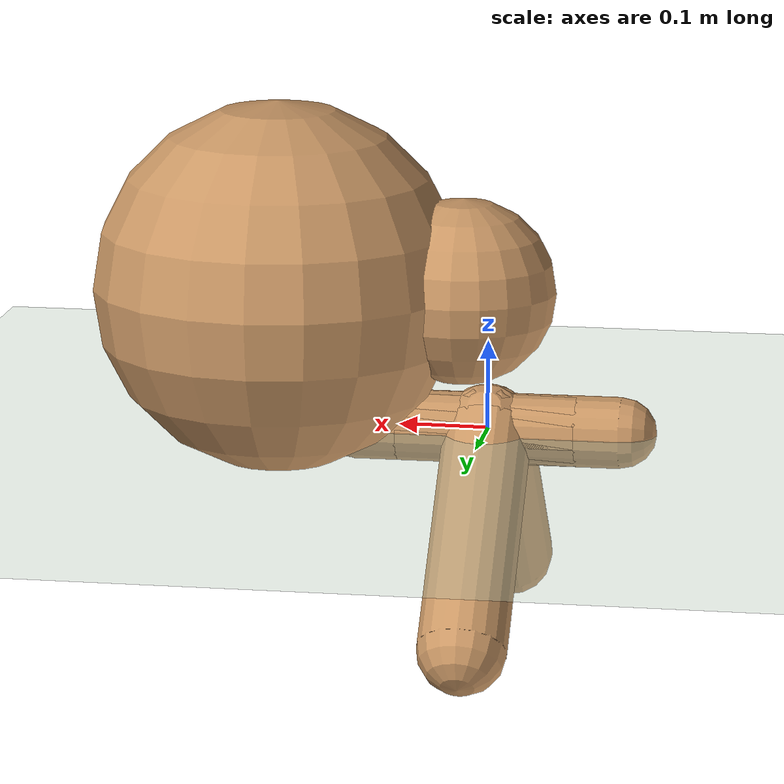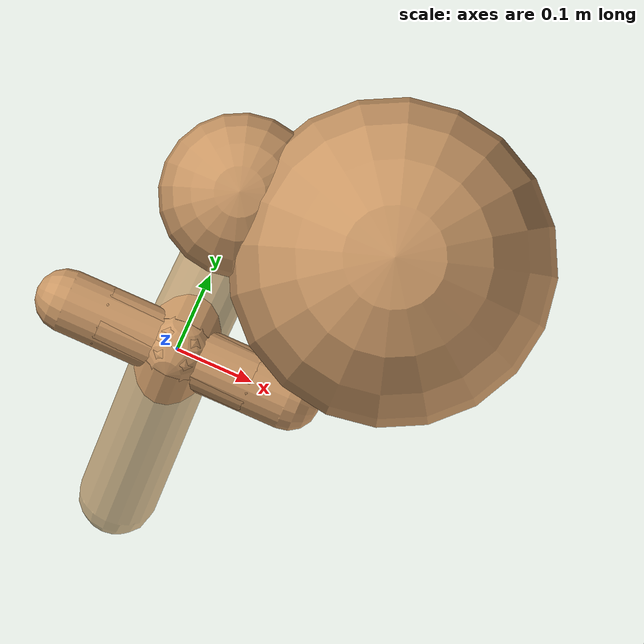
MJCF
<?xml version='1.0' encoding='utf-8'?>
<mujoco model="biped">
	<compiler angle="degree" coordinate="local" inertiafromgeom="true" />
	<option integrator="RK4" timestep="0.01" />
	<default>
		<joint armature="1" damping="1" limited="true" />
		<geom conaffinity="0" condim="3" density="5.0" friction="1 0.5 0.5" margin="0.01" rgba="0.8 0.6 0.4 1" />
	</default>
	<asset>
		<texture builtin="gradient" height="100" rgb1="1 1 1" rgb2="0 0 0" type="skybox" width="100" />
		<texture builtin="flat" height="1278" mark="cross" markrgb="1 1 1" name="texgeom" random="0.01" rgb1="0.8 0.6 0.4" rgb2="0.8 0.6 0.4" type="cube" />
		<texture builtin="checker" height="100" name="texplane" rgb1="0 0 0" rgb2="0.8 0.8 0.8" type="2d" width="100" />
		<material name="geom" texture="texgeom" texuniform="true" />
		<material name="MatPlane" reflectance="0.5" shininess="1" specular="1" texrepeat="60 60" texture="texplane" />
	</asset>
	<worldbody>
		<light cutoff="100" diffuse="1 1 1" dir="-0 0 -1.3" directional="true" exponent="1" pos="0 0 1.3" specular=".1 .1 .1" />
		<geom conaffinity="1" condim="3" material="MatPlane" name="floor" pos="0 0 0" rgba="0.8 0.9 0.8 1" size="40 40 40" type="plane" />
		<body>
			<geom name="torso_geom" pos=" 0.2   0.2   0.2 " size=" 0.2 " type="sphere" />
			<joint armature=" 10 " damping=" 1.0 " name="root" pos=" 0.2   0.2   0.2 " type="free" />
			<inertial mass=" 10 " pos=" 0.2   0.2   0.2 " />
			<body>
				<geom fromto="0 0 0 0 -0.2 -0.2" name="right_thigh" size=" 0.05 " type="capsule" />
				<joint axis="0 1 1" name="right_hip" pos="0 -0.2 -0.2" range="-30 30" type="hinge" />
				<inertial mass="2" pos="0 -0.2 -0.2" />
				<body>
					<geom fromto="0 0 0 0 -0.2 -0.2" name="rightshin" size="0.05" type="capsule" />
					<joint axis="1 1 0" name="rightknee" pos="0 -0.2 -0.2" range="-150 0" type="hinge" />
					<inertial mass=" 2 " pos="0 -0.2 -0.2" />
					<body>
						<geom fromto="0 0 0 0.1 0 0" name="rightfoot" size="0.04" type="capsule" />
						<joint axis="-1 1 1" name="rightankle" pos="0 -0.2 -0.2" range="-45 45" type="hinge" />
						<inertial mass=" 0.5 " pos="0.05 0 0" />
					</body>
				</body>
			</body>
			<body>
				<geom fromto="0 0 0 0 0.2 -0.2" name="leftthight" size="0.05" type="capsule" />
				<joint axis="0 -1 1" name="lefthip" pos="0 0.2 -0.2" range="-30 30" type="hinge" />
				<inertial mass="2" pos="0 0.2 -0.2" />
				<body>
					<geom fromto="0 0 0 0 0.2 -0.2" name="leftshin" size="0.05" type="capsule" />
					<joint axis="-1 1 0" name="leftknee" pos="0 0.2 -0.2" range="-150 0" type="hinge" />
					<inertial mass=" 2 " pos="0 0.2 -0.2" />
					<body>
						<geom fromto="0 0 0 -0.1 0 0" name="leftfoot" size="0.04" type="capsule" />
						<joint axis="1 1 -1" name="leftankle" pos="0 0.2 -0.2" range="-45 45" type="hinge" />
						<inertial mass=" 0.5 " pos="-0.05 0 0" />
					</body>
				</body>
			</body>
			<body>
				<geom name="head" pos="0 0.2 0.2" size="0.1" type="sphere" />
				<joint axis="1 1 1" name="neck" pos="0 0.2 0.2" range="-90 90" type="hinge" />
				<inertial mass=" 1 " pos="0 0.2 0.2" />
			</body>
			<body>
				<geom fromto="0 0 0 -0.15 0 0" name="rightarm" size="0.04" type="capsule" />
				<joint axis="-1 -1 -1" name="rightshoulder" pos="0 0.2 0.2" range="-180 180" type="hinge" />
				<inertial mass=" 1 " pos="0.075 0 0" />
			</body>
			<body>
				<geom fromto="0 0 0 0.15 0 0" name="leftarm" size="0.04" type="capsule" />
				<joint axis="1 -1 -1" name="leftshoulder" pos="0 0.2 0.2" range="-180 180" type="hinge" />
				<inertial mass=" 1 " />
			</body>
		</body>
	</worldbody>
</mujoco>
